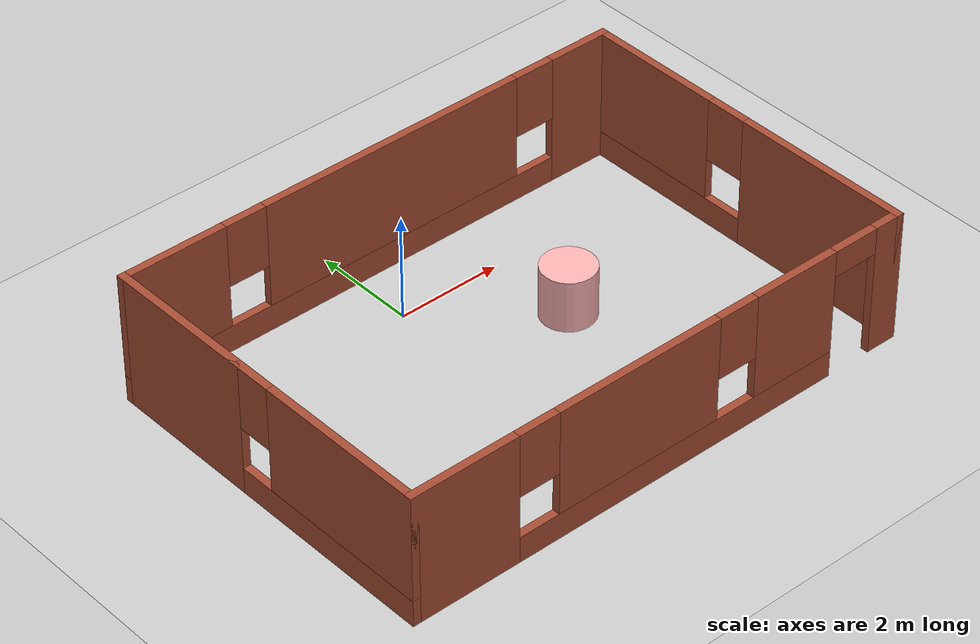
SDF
<sdf version="1.7">
 <world name="default">
  <light name="sun" type="directional">
   <pose>0 0 10 0 -0 0</pose>
   <diffuse>0.8 0.8 0.8 1</diffuse>
   <specular>0.2 0.2 0.2 1</specular>
   <attenuation>
    <range>1000</range>
    <constant>0.9</constant>
    <linear>0.01</linear>
    <quadratic>0.001</quadratic>
   </attenuation>
   <direction>-0.5 0.1 -0.9</direction>
   <spot><inner_angle>0</inner_angle><outer_angle>0</outer_angle><falloff>0</falloff></spot>
  </light>
  <model name="ground_plane">
   <static>1</static>
   <link name="link">
    <collision name="collision">
     <geometry><plane><normal>0 0 1</normal><size>100 100</size></plane></geometry>
     <surface><friction><ode><mu>100</mu><mu2>50</mu2></ode></friction></surface>
    </collision>
    <visual name="visual">
     <cast_shadows>0</cast_shadows>
     <geometry><plane><normal>0 0 1</normal><size>100 100</size></plane></geometry>
     <material>
      <script><uri>file://media/materials/scripts/gazebo.material</uri><name>Gazebo/Grey</name></script>
     </material>
    </visual>
   </link>
  </model>
  <gravity>0 0 -9.8</gravity>
  <magnetic_field>6e-06 2.3e-05 -4.2e-05</magnetic_field>
  <atmosphere type="adiabatic"/>
  <physics type="ode">
   <max_step_size>0.001</max_step_size>
   <real_time_factor>1</real_time_factor>
   <real_time_update_rate>1000</real_time_update_rate>
  </physics>
  <scene><ambient>0.4 0.4 0.4 1</ambient><background>0.7 0.7 0.7 1</background><shadows>1</shadows></scene>
  <audio><device>default</device></audio>
  <spherical_coordinates>
   <surface_model>EARTH_WGS84</surface_model>
   <latitude_deg>0</latitude_deg>
   <longitude_deg>0</longitude_deg>
   <elevation>0</elevation>
   <heading_deg>0</heading_deg>
  </spherical_coordinates>
  <model name="building_editor">
   <pose>0.48419 -2.19185 0 0 -0 0</pose>
   <link name="Wall_16">
    <pose>-5.05 -1.375 0 0 -0 -1.5708</pose>
    <visual name="Wall_16_Visual_0">
     <pose>-2.05619 0 1.25 0 -0 0</pose>
     <geometry><box><size>0.137612 0.15 2.5</size></box></geometry>
     <material>
      <script><uri>file://media/materials/scripts/gazebo.material</uri><name>Gazebo/Bricks</name></script>
      <ambient>1 1 1 1</ambient>
     </material>
     <meta><layer>0</layer></meta>
    </visual>
    <collision name="Wall_16_Collision_0">
     <geometry><box><size>0.137612 0.15 2.5</size></box></geometry>
     <pose>-2.05619 0 1.25 0 -0 0</pose>
    </collision>
    <visual name="Wall_16_Visual_1">
     <pose>0.068806 0 0.25 0 -0 0</pose>
     <geometry><box><size>4.11239 0.15 0.5</size></box></geometry>
     <material>
      <script><uri>file://media/materials/scripts/gazebo.material</uri><name>Gazebo/Bricks</name></script>
      <ambient>1 1 1 1</ambient>
     </material>
     <meta><layer>0</layer></meta>
    </visual>
    <collision name="Wall_16_Collision_1">
     <geometry><box><size>4.11239 0.15 0.5</size></box></geometry>
     <pose>0.068806 0 0.25 0 -0 0</pose>
    </collision>
    <visual name="Wall_16_Visual_2">
     <pose>0.468806 0 1.5 0 -0 0</pose>
     <geometry><box><size>3.31239 0.15 2</size></box></geometry>
     <material>
      <script><uri>file://media/materials/scripts/gazebo.material</uri><name>Gazebo/Bricks</name></script>
      <ambient>1 1 1 1</ambient>
     </material>
     <meta><layer>0</layer></meta>
    </visual>
    <collision name="Wall_16_Collision_2">
     <geometry><box><size>3.31239 0.15 2</size></box></geometry>
     <pose>0.468806 0 1.5 0 -0 0</pose>
    </collision>
    <visual name="Wall_16_Visual_3">
     <pose>-1.58739 0 1.9 0 -0 0</pose>
     <geometry><box><size>0.8 0.15 1.2</size></box></geometry>
     <material>
      <script><uri>file://media/materials/scripts/gazebo.material</uri><name>Gazebo/Bricks</name></script>
      <ambient>1 1 1 1</ambient>
     </material>
     <meta><layer>0</layer></meta>
    </visual>
    <collision name="Wall_16_Collision_3">
     <geometry><box><size>0.8 0.15 1.2</size></box></geometry>
     <pose>-1.58739 0 1.9 0 -0 0</pose>
    </collision>
   </link>
   <link name="Wall_17">
    <pose>0 -3.425 0 0 -0 0</pose>
    <visual name="Wall_17_Visual_0">
     <pose>-4.07314 0 1.25 0 -0 0</pose>
     <geometry><box><size>2.10371 0.15 2.5</size></box></geometry>
     <material>
      <script><uri>file://media/materials/scripts/gazebo.material</uri><name>Gazebo/Bricks</name></script>
      <ambient>1 1 1 1</ambient>
     </material>
     <meta><layer>0</layer></meta>
    </visual>
    <collision name="Wall_17_Collision_0">
     <geometry><box><size>2.10371 0.15 2.5</size></box></geometry>
     <pose>-4.07314 0 1.25 0 -0 0</pose>
    </collision>
    <visual name="Wall_17_Visual_1">
     <pose>4.81923 0 1.25 0 -0 0</pose>
     <geometry><box><size>0.61154 0.15 2.5</size></box></geometry>
     <material>
      <script><uri>file://media/materials/scripts/gazebo.material</uri><name>Gazebo/Bricks</name></script>
      <ambient>1 1 1 1</ambient>
     </material>
     <meta><layer>0</layer></meta>
    </visual>
    <collision name="Wall_17_Collision_1">
     <geometry><box><size>0.61154 0.15 2.5</size></box></geometry>
     <pose>4.81923 0 1.25 0 -0 0</pose>
    </collision>
    <visual name="Wall_17_Visual_2">
     <pose>0.296087 0 0.25 0 -0 0</pose>
     <geometry><box><size>6.63475 0.15 0.5</size></box></geometry>
     <material>
      <script><uri>file://media/materials/scripts/gazebo.material</uri><name>Gazebo/Bricks</name></script>
      <ambient>1 1 1 1</ambient>
     </material>
     <meta><layer>0</layer></meta>
    </visual>
    <collision name="Wall_17_Collision_2">
     <geometry><box><size>6.63475 0.15 0.5</size></box></geometry>
     <pose>0.296087 0 0.25 0 -0 0</pose>
    </collision>
    <visual name="Wall_17_Visual_3">
     <pose>-0.562662 0 1.5 0 -0 0</pose>
     <geometry><box><size>3.31725 0.15 2</size></box></geometry>
     <material>
      <script><uri>file://media/materials/scripts/gazebo.material</uri><name>Gazebo/Bricks</name></script>
      <ambient>1 1 1 1</ambient>
     </material>
     <meta><layer>0</layer></meta>
    </visual>
    <collision name="Wall_17_Collision_3">
     <geometry><box><size>3.31725 0.15 2</size></box></geometry>
     <pose>-0.562662 0 1.5 0 -0 0</pose>
    </collision>
    <visual name="Wall_17_Visual_4">
     <pose>2.75471 0 1.5 0 -0 0</pose>
     <geometry><box><size>1.7175 0.15 2</size></box></geometry>
     <material>
      <script><uri>file://media/materials/scripts/gazebo.material</uri><name>Gazebo/Bricks</name></script>
      <ambient>1 1 1 1</ambient>
     </material>
     <meta><layer>0</layer></meta>
    </visual>
    <collision name="Wall_17_Collision_4">
     <geometry><box><size>1.7175 0.15 2</size></box></geometry>
     <pose>2.75471 0 1.5 0 -0 0</pose>
    </collision>
    <visual name="Wall_17_Visual_5">
     <pose>-2.62129 0 1.9 0 -0 0</pose>
     <geometry><box><size>0.8 0.15 1.2</size></box></geometry>
     <material>
      <script><uri>file://media/materials/scripts/gazebo.material</uri><name>Gazebo/Bricks</name></script>
      <ambient>1 1 1 1</ambient>
     </material>
     <meta><layer>0</layer></meta>
    </visual>
    <collision name="Wall_17_Collision_5">
     <geometry><box><size>0.8 0.15 1.2</size></box></geometry>
     <pose>-2.62129 0 1.9 0 -0 0</pose>
    </collision>
    <visual name="Wall_17_Visual_6">
     <pose>1.49596 0 1.9 0 -0 0</pose>
     <geometry><box><size>0.8 0.15 1.2</size></box></geometry>
     <material>
      <script><uri>file://media/materials/scripts/gazebo.material</uri><name>Gazebo/Bricks</name></script>
      <ambient>1 1 1 1</ambient>
     </material>
     <meta><layer>0</layer></meta>
    </visual>
    <collision name="Wall_17_Collision_6">
     <geometry><box><size>0.8 0.15 1.2</size></box></geometry>
     <pose>1.49596 0 1.9 0 -0 0</pose>
    </collision>
    <visual name="Wall_17_Visual_7">
     <pose>4.06346 0 2.25 0 -0 0</pose>
     <geometry><box><size>0.9 0.15 0.5</size></box></geometry>
     <material>
      <script><uri>file://media/materials/scripts/gazebo.material</uri><name>Gazebo/Bricks</name></script>
      <ambient>1 1 1 1</ambient>
     </material>
     <meta><layer>0</layer></meta>
    </visual>
    <collision name="Wall_17_Collision_7">
     <geometry><box><size>0.9 0.15 0.5</size></box></geometry>
     <pose>4.06346 0 2.25 0 -0 0</pose>
    </collision>
   </link>
   <link name="Wall_18">
    <pose>5.05 0 0 0 -0 1.5708</pose>
    <visual name="Wall_18_Visual_0">
     <pose>-1.76285 0 1.25 0 -0 0</pose>
     <geometry><box><size>3.4743 0.15 2.5</size></box></geometry>
     <material>
      <script><uri>file://media/materials/scripts/gazebo.material</uri><name>Gazebo/Bricks</name></script>
      <ambient>1 1 1 1</ambient>
     </material>
     <meta><layer>0</layer></meta>
    </visual>
    <collision name="Wall_18_Collision_0">
     <geometry><box><size>3.4743 0.15 2.5</size></box></geometry>
     <pose>-1.76285 0 1.25 0 -0 0</pose>
    </collision>
    <visual name="Wall_18_Visual_1">
     <pose>1.73715 0 0.25 0 -0 0</pose>
     <geometry><box><size>3.5257 0.15 0.5</size></box></geometry>
     <material>
      <script><uri>file://media/materials/scripts/gazebo.material</uri><name>Gazebo/Bricks</name></script>
      <ambient>1 1 1 1</ambient>
     </material>
     <meta><layer>0</layer></meta>
    </visual>
    <collision name="Wall_18_Collision_1">
     <geometry><box><size>3.5257 0.15 0.5</size></box></geometry>
     <pose>1.73715 0 0.25 0 -0 0</pose>
    </collision>
    <visual name="Wall_18_Visual_2">
     <pose>2.13715 0 1.5 0 -0 0</pose>
     <geometry><box><size>2.7257 0.15 2</size></box></geometry>
     <material>
      <script><uri>file://media/materials/scripts/gazebo.material</uri><name>Gazebo/Bricks</name></script>
      <ambient>1 1 1 1</ambient>
     </material>
     <meta><layer>0</layer></meta>
    </visual>
    <collision name="Wall_18_Collision_2">
     <geometry><box><size>2.7257 0.15 2</size></box></geometry>
     <pose>2.13715 0 1.5 0 -0 0</pose>
    </collision>
    <visual name="Wall_18_Visual_3">
     <pose>0.374302 0 1.9 0 -0 0</pose>
     <geometry><box><size>0.8 0.15 1.2</size></box></geometry>
     <material>
      <script><uri>file://media/materials/scripts/gazebo.material</uri><name>Gazebo/Bricks</name></script>
      <ambient>1 1 1 1</ambient>
     </material>
     <meta><layer>0</layer></meta>
    </visual>
    <collision name="Wall_18_Collision_3">
     <geometry><box><size>0.8 0.15 1.2</size></box></geometry>
     <pose>0.374302 0 1.9 0 -0 0</pose>
    </collision>
   </link>
   <link name="Wall_19">
    <pose>0 3.425 0 0 -0 3.14159</pose>
    <visual name="Wall_19_Visual_0">
     <pose>-4.48197 0 1.25 0 -0 0</pose>
     <geometry><box><size>1.28607 0.15 2.5</size></box></geometry>
     <material>
      <script><uri>file://media/materials/scripts/gazebo.material</uri><name>Gazebo/Bricks</name></script>
      <ambient>1 1 1 1</ambient>
     </material>
     <meta><layer>0</layer></meta>
    </visual>
    <collision name="Wall_19_Collision_0">
     <geometry><box><size>1.28607 0.15 2.5</size></box></geometry>
     <pose>-4.48197 0 1.25 0 -0 0</pose>
    </collision>
    <visual name="Wall_19_Visual_1">
     <pose>0.643033 0 0.25 0 -0 0</pose>
     <geometry><box><size>8.96393 0.15 0.5</size></box></geometry>
     <material>
      <script><uri>file://media/materials/scripts/gazebo.material</uri><name>Gazebo/Bricks</name></script>
      <ambient>1 1 1 1</ambient>
     </material>
     <meta><layer>0</layer></meta>
    </visual>
    <collision name="Wall_19_Collision_1">
     <geometry><box><size>8.96393 0.15 0.5</size></box></geometry>
     <pose>0.643033 0 0.25 0 -0 0</pose>
    </collision>
    <visual name="Wall_19_Visual_2">
     <pose>-0.374128 0 1.5 0 -0 0</pose>
     <geometry><box><size>5.32961 0.15 2</size></box></geometry>
     <material>
      <script><uri>file://media/materials/scripts/gazebo.material</uri><name>Gazebo/Bricks</name></script>
      <ambient>1 1 1 1</ambient>
     </material>
     <meta><layer>0</layer></meta>
    </visual>
    <collision name="Wall_19_Collision_2">
     <geometry><box><size>5.32961 0.15 2</size></box></geometry>
     <pose>-0.374128 0 1.5 0 -0 0</pose>
    </collision>
    <visual name="Wall_19_Visual_3">
     <pose>4.10784 0 1.5 0 -0 0</pose>
     <geometry><box><size>2.03432 0.15 2</size></box></geometry>
     <material>
      <script><uri>file://media/materials/scripts/gazebo.material</uri><name>Gazebo/Bricks</name></script>
      <ambient>1 1 1 1</ambient>
     </material>
     <meta><layer>0</layer></meta>
    </visual>
    <collision name="Wall_19_Collision_3">
     <geometry><box><size>2.03432 0.15 2</size></box></geometry>
     <pose>4.10784 0 1.5 0 -0 0</pose>
    </collision>
    <visual name="Wall_19_Visual_4">
     <pose>-3.43893 0 1.9 0 -0 0</pose>
     <geometry><box><size>0.8 0.15 1.2</size></box></geometry>
     <material>
      <script><uri>file://media/materials/scripts/gazebo.material</uri><name>Gazebo/Bricks</name></script>
      <ambient>1 1 1 1</ambient>
     </material>
     <meta><layer>0</layer></meta>
    </visual>
    <collision name="Wall_19_Collision_4">
     <geometry><box><size>0.8 0.15 1.2</size></box></geometry>
     <pose>-3.43893 0 1.9 0 -0 0</pose>
    </collision>
    <visual name="Wall_19_Visual_5">
     <pose>2.69068 0 1.9 0 -0 0</pose>
     <geometry><box><size>0.8 0.15 1.2</size></box></geometry>
     <material>
      <script><uri>file://media/materials/scripts/gazebo.material</uri><name>Gazebo/Bricks</name></script>
      <ambient>1 1 1 1</ambient>
     </material>
     <meta><layer>0</layer></meta>
    </visual>
    <collision name="Wall_19_Collision_5">
     <geometry><box><size>0.8 0.15 1.2</size></box></geometry>
     <pose>2.69068 0 1.9 0 -0 0</pose>
    </collision>
   </link>
   <link name="Wall_20">
    <collision name="Wall_20_Collision">
     <geometry><box><size>3 0.15 2.5</size></box></geometry>
     <pose>0 0 1.25 0 -0 0</pose>
    </collision>
    <visual name="Wall_20_Visual">
     <pose>0 0 1.25 0 -0 0</pose>
     <geometry><box><size>3 0.15 2.5</size></box></geometry>
     <material>
      <script><uri>file://media/materials/scripts/gazebo.material</uri><name>Gazebo/Bricks</name></script>
      <ambient>1 1 1 1</ambient>
     </material>
     <meta><layer>0</layer></meta>
    </visual>
    <pose>-5.05 2 0 0 -0 -1.5708</pose>
   </link>
   <static>1</static>
  </model>
  <model name="model_editor">
   <link name="link">
    <inertial>
     <mass>1</mass>
     <inertia><ixx>0.145833</ixx><ixy>0</ixy><ixz>0</ixz><iyy>0.145833</iyy><iyz>0</iyz><izz>0.125</izz></inertia>
    </inertial>
    <visual name="visual">
     <geometry><cylinder><radius>0.5</radius><length>1</length></cylinder></geometry>
     <material>
      <script><name>Gazebo/Grey</name><uri>file://media/materials/scripts/gazebo.material</uri></script>
      <shader type="pixel"><normal_map>__default__</normal_map></shader>
      <ambient>1 0 0 0</ambient>
      <diffuse>1 0.7 0.7 1</diffuse>
      <specular>1 0.01 0.01 1</specular>
      <emissive>0 0 0 1</emissive>
     </material>
    </visual>
    <collision name="collision">
     <geometry><cylinder><radius>0.5</radius><length>1</length></cylinder></geometry>
     <surface>
      <friction>
       <ode><mu>1</mu><mu2>1</mu2><fdir1>0 0 0</fdir1><slip1>0</slip1><slip2>0</slip2></ode>
       <torsional>
        <coefficient>1</coefficient>
        <patch_radius>0</patch_radius>
        <surface_radius>0</surface_radius>
        <use_patch_radius>1</use_patch_radius>
        <ode><slip>0</slip></ode>
       </torsional>
      </friction>
      <bounce><restitution_coefficient>0</restitution_coefficient><threshold>1e+06</threshold></bounce>
      <contact>
       <collide_without_contact>0</collide_without_contact>
       <collide_without_contact_bitmask>1</collide_without_contact_bitmask>
       <collide_bitmask>1</collide_bitmask>
       <ode>
        <soft_cfm>0</soft_cfm>
        <soft_erp>0.2</soft_erp>
        <kp>1e+13</kp>
        <kd>1</kd>
        <max_vel>0.01</max_vel>
        <min_depth>0</min_depth>
       </ode>
       <bullet>
        <split_impulse>1</split_impulse>
        <split_impulse_penetration_threshold>-0.01</split_impulse_penetration_threshold>
        <soft_cfm>0</soft_cfm>
        <soft_erp>0.2</soft_erp>
        <kp>1e+13</kp>
        <kd>1</kd>
       </bullet>
      </contact>
     </surface>
    </collision>
   </link>
   <static>0</static>
   <pose>2.07216 -1.7247 0.499996 -2e-06 -2e-06 0</pose>
  </model>
 </world>
</sdf>
